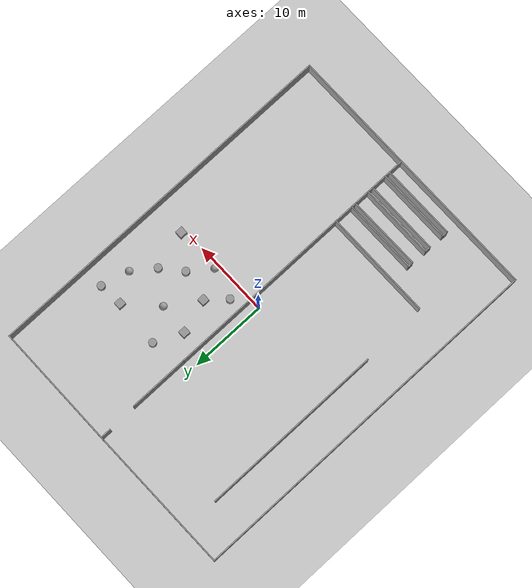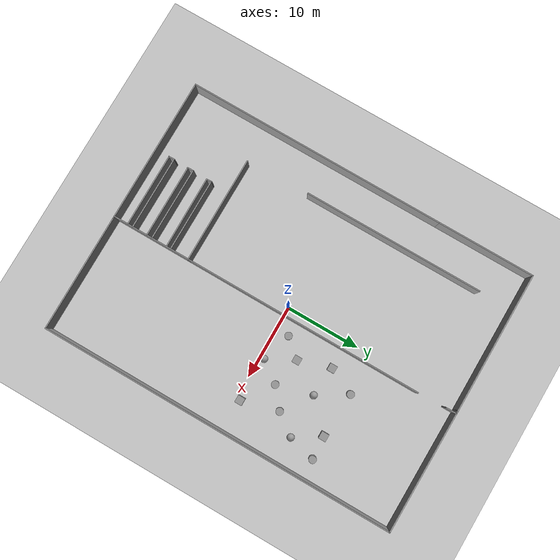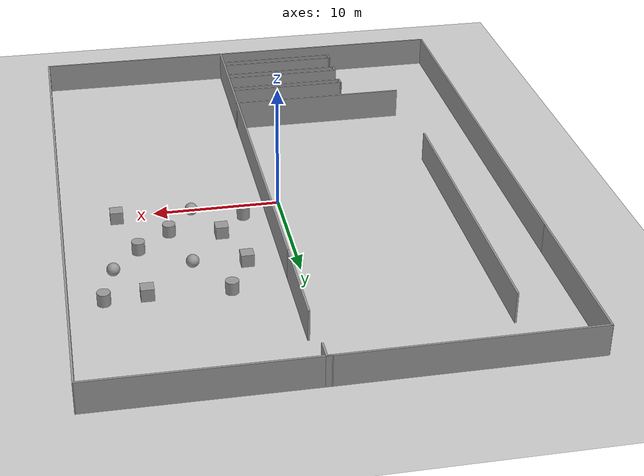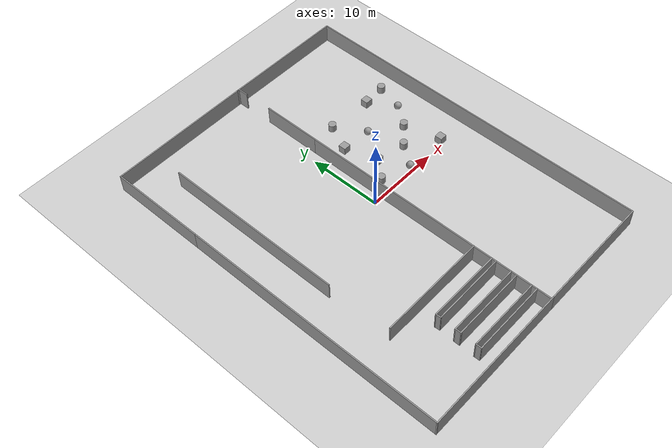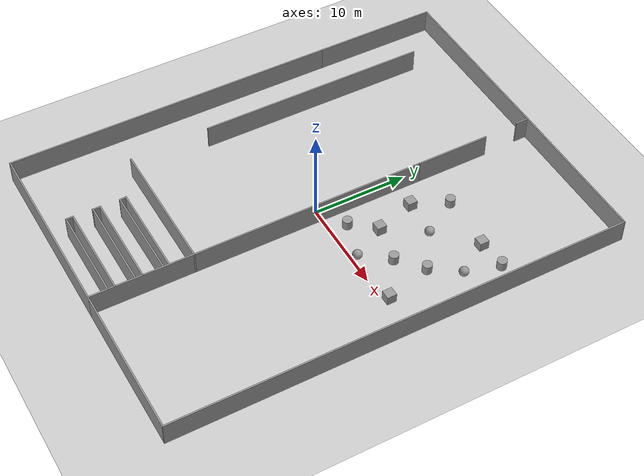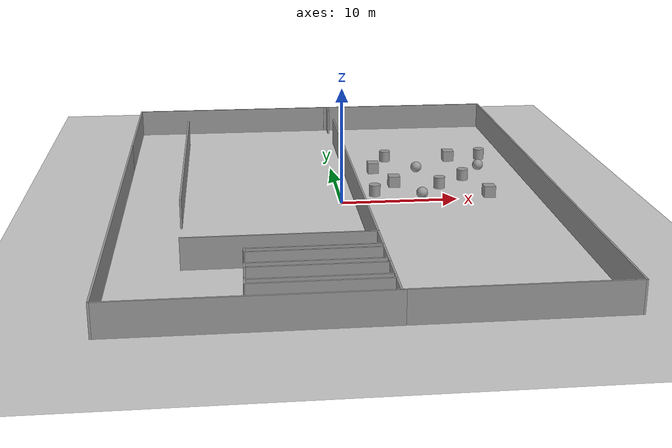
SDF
<sdf version="1.6">
 <world name="default">
  <light name="sun" type="directional">
   <pose>0 0 10 0 -0 0</pose>
   <diffuse>0.8 0.8 0.8 1</diffuse>
   <specular>0.1 0.1 0.1 1</specular>
   <attenuation>
    <range>1000</range>
    <constant>0.9</constant>
    <linear>0.01</linear>
    <quadratic>0.001</quadratic>
   </attenuation>
   <direction>-0.5 0.5 -1</direction>
  </light>
  <model name="ground_plane">
   <static>1</static>
   <link name="link">
    <collision name="collision">
     <geometry><plane><normal>0 0 1</normal><size>100 100</size></plane></geometry>
     <surface><friction><ode><mu>100</mu><mu2>50</mu2></ode></friction></surface>
    </collision>
    <visual name="visual">
     <cast_shadows>0</cast_shadows>
     <geometry><plane><normal>0 0 1</normal><size>100 100</size></plane></geometry>
     <material>
      <script><uri>file://media/materials/scripts/gazebo.material</uri><name>Gazebo/Grey</name></script>
     </material>
    </visual>
   </link>
  </model>
  <gravity>0 0 -9.8</gravity>
  <magnetic_field>6e-06 2.3e-05 -4.2e-05</magnetic_field>
  <atmosphere type="adiabatic"/>
  <physics name="default_physics" default="0" type="ode">
   <max_step_size>0.01</max_step_size>
   <real_time_factor>1</real_time_factor>
   <real_time_update_rate>100</real_time_update_rate>
  </physics>
  <scene><ambient>0.4 0.4 0.4 1</ambient><background>0.7 0.7 0.7 1</background><shadows>1</shadows></scene>
  <spherical_coordinates>
   <surface_model>EARTH_WGS84</surface_model>
   <latitude_deg>0</latitude_deg>
   <longitude_deg>0</longitude_deg>
   <elevation>0</elevation>
   <heading_deg>0</heading_deg>
  </spherical_coordinates>
  <model name="ruvu_warehouse">
   <pose>-0.571999 -0.121072 0 0 -0 0</pose>
   <link name="Wall_0">
    <collision name="Wall_0_Collision">
     <geometry><box><size>20 0.15 2.5</size></box></geometry>
     <pose>0 0 1.25 0 -0 0</pose>
    </collision>
    <visual name="Wall_0_Visual">
     <pose>0 0 1.25 0 -0 0</pose>
     <geometry><box><size>20 0.15 2.5</size></box></geometry>
     <material>
      <script><uri>file://media/materials/scripts/gazebo.material</uri><name>Gazebo/Grey</name></script>
      <ambient>1 1 1 1</ambient>
     </material>
    </visual>
    <pose>-7.92522 -24.2252 0 0 -0 3.14159</pose>
   </link>
   <link name="Wall_12">
    <collision name="Wall_12_Collision">
     <geometry><box><size>10 0.15 2.5</size></box></geometry>
     <pose>0 0 1.25 0 -0 0</pose>
    </collision>
    <visual name="Wall_12_Visual">
     <pose>0 0 1.25 0 -0 0</pose>
     <geometry><box><size>10 0.15 2.5</size></box></geometry>
     <material>
      <script><uri>file://media/materials/scripts/gazebo.material</uri><name>Gazebo/Grey</name></script>
      <ambient>1 1 1 1</ambient>
     </material>
    </visual>
    <pose>-3.23398 -22.2759 0 0 -0 3.14159</pose>
   </link>
   <link name="Wall_17">
    <collision name="Wall_17_Collision">
     <geometry><box><size>10 0.15 2.5</size></box></geometry>
     <pose>0 0 1.25 0 -0 0</pose>
    </collision>
    <visual name="Wall_17_Visual">
     <pose>0 0 1.25 0 -0 0</pose>
     <geometry><box><size>10 0.15 2.5</size></box></geometry>
     <material>
      <script><uri>file://media/materials/scripts/gazebo.material</uri><name>Gazebo/Grey</name></script>
      <ambient>1 1 1 1</ambient>
     </material>
    </visual>
    <pose>-3.24395 -21.5612 0 0 -0 3.14159</pose>
   </link>
   <link name="Wall_19">
    <collision name="Wall_19_Collision">
     <geometry><box><size>9.99597 0.15 2.5</size></box></geometry>
     <pose>0 0 1.25 0 -0 0</pose>
    </collision>
    <visual name="Wall_19_Visual">
     <pose>0 0 1.25 0 -0 0</pose>
     <geometry><box><size>9.99597 0.15 2.5</size></box></geometry>
     <material>
      <script><uri>file://media/materials/scripts/gazebo.material</uri><name>Gazebo/Grey</name></script>
      <ambient>1 1 1 1</ambient>
     </material>
    </visual>
    <pose>-3.19541 -19.5108 0 0 -0 3.14092</pose>
   </link>
   <link name="Wall_21">
    <collision name="Wall_21_Collision">
     <geometry><box><size>0.864713 0.15 2.5</size></box></geometry>
     <pose>0 0 1.25 0 -0 0</pose>
    </collision>
    <visual name="Wall_21_Visual">
     <pose>0 0 1.25 0 -0 0</pose>
     <geometry><box><size>0.864713 0.15 2.5</size></box></geometry>
     <material>
      <script><uri>file://media/materials/scripts/gazebo.material</uri><name>Gazebo/Grey</name></script>
      <ambient>1 1 1 1</ambient>
     </material>
    </visual>
    <pose>-8.16396 -21.9185 0 0 -0 1.58474</pose>
   </link>
   <link name="Wall_24">
    <collision name="Wall_24_Collision">
     <geometry><box><size>9.99597 0.15 2.5</size></box></geometry>
     <pose>0 0 1.25 0 -0 0</pose>
    </collision>
    <visual name="Wall_24_Visual">
     <pose>0 0 1.25 0 -0 0</pose>
     <geometry><box><size>9.99597 0.15 2.5</size></box></geometry>
     <material>
      <script><uri>file://media/materials/scripts/gazebo.material</uri><name>Gazebo/Grey</name></script>
      <ambient>1 1 1 1</ambient>
     </material>
    </visual>
    <pose>-3.19541 -18.7665 0 0 -0 3.14092</pose>
   </link>
   <link name="Wall_25">
    <collision name="Wall_25_Collision">
     <geometry><box><size>0.894383 0.15 2.5</size></box></geometry>
     <pose>0 0 1.25 0 -0 0</pose>
    </collision>
    <visual name="Wall_25_Visual">
     <pose>0 0 1.25 0 -0 0</pose>
     <geometry><box><size>0.894383 0.15 2.5</size></box></geometry>
     <material>
      <script><uri>file://media/materials/scripts/gazebo.material</uri><name>Gazebo/Grey</name></script>
      <ambient>1 1 1 1</ambient>
     </material>
    </visual>
    <pose>-8.11839 -19.1619 0 0 0 -1.5708</pose>
   </link>
   <link name="Wall_27">
    <collision name="Wall_27_Collision">
     <geometry><box><size>9.91642 0.15 2.5</size></box></geometry>
     <pose>0 0 1.25 0 -0 0</pose>
    </collision>
    <visual name="Wall_27_Visual">
     <pose>0 0 1.25 0 -0 0</pose>
     <geometry><box><size>9.91642 0.15 2.5</size></box></geometry>
     <material>
      <script><uri>file://media/materials/scripts/gazebo.material</uri><name>Gazebo/Grey</name></script>
      <ambient>1 1 1 1</ambient>
     </material>
    </visual>
    <pose>-3.15556 -16.7028 0 0 0 -3.13614</pose>
   </link>
   <link name="Wall_29">
    <collision name="Wall_29_Collision">
     <geometry><box><size>9.9628 0.15 2.5</size></box></geometry>
     <pose>0 0 1.25 0 -0 0</pose>
    </collision>
    <visual name="Wall_29_Visual">
     <pose>0 0 1.25 0 -0 0</pose>
     <geometry><box><size>9.9628 0.15 2.5</size></box></geometry>
     <material>
      <script><uri>file://media/materials/scripts/gazebo.material</uri><name>Gazebo/Grey</name></script>
      <ambient>1 1 1 1</ambient>
     </material>
    </visual>
    <pose>-3.17882 -16.0796 0 0 -0 0.00068</pose>
   </link>
   <link name="Wall_3">
    <collision name="Wall_3_Collision">
     <geometry><box><size>35.5 0.15 2.5</size></box></geometry>
     <pose>0 0 1.25 0 -0 0</pose>
    </collision>
    <visual name="Wall_3_Visual">
     <pose>0 0 1.25 0 -0 0</pose>
     <geometry><box><size>35.5 0.15 2.5</size></box></geometry>
     <material>
      <script><uri>file://media/materials/scripts/gazebo.material</uri><name>Gazebo/Grey</name></script>
      <ambient>1 1 1 1</ambient>
     </material>
    </visual>
    <pose>-17.8502 -6.55022 0 0 -0 1.5708</pose>
   </link>
   <link name="Wall_31">
    <collision name="Wall_31_Collision">
     <geometry><box><size>0.798196 0.15 2.5</size></box></geometry>
     <pose>0 0 1.25 0 -0 0</pose>
    </collision>
    <visual name="Wall_31_Visual">
     <pose>0 0 1.25 0 -0 0</pose>
     <geometry><box><size>0.798196 0.15 2.5</size></box></geometry>
     <material>
      <script><uri>file://media/materials/scripts/gazebo.material</uri><name>Gazebo/Grey</name></script>
      <ambient>1 1 1 1</ambient>
     </material>
    </visual>
    <pose>-8.06196 -16.4062 0 0 0 -1.49896</pose>
   </link>
   <link name="Wall_34">
    <collision name="Wall_34_Collision">
     <geometry><box><size>14.5 0.15 2.5</size></box></geometry>
     <pose>0 0 1.25 0 -0 0</pose>
    </collision>
    <visual name="Wall_34_Visual">
     <pose>0 0 1.25 0 -0 0</pose>
     <geometry><box><size>14.5 0.15 2.5</size></box></geometry>
     <material>
      <script><uri>file://media/materials/scripts/gazebo.material</uri><name>Gazebo/Grey</name></script>
      <ambient>1 1 1 1</ambient>
     </material>
    </visual>
    <pose>-5.4135 -13.532 0 0 -0 3.14159</pose>
   </link>
   <link name="Wall_39">
    <collision name="Wall_39_Collision">
     <geometry><box><size>24.5 0.15 2.5</size></box></geometry>
     <pose>0 0 1.25 0 -0 0</pose>
    </collision>
    <visual name="Wall_39_Visual">
     <pose>0 0 1.25 0 -0 0</pose>
     <geometry><box><size>24.5 0.15 2.5</size></box></geometry>
     <material>
      <script><uri>file://media/materials/scripts/gazebo.material</uri><name>Gazebo/Grey</name></script>
      <ambient>1 1 1 1</ambient>
     </material>
    </visual>
    <pose>-12.8732 7.28972 0 0 -0 1.5708</pose>
   </link>
   <link name="Wall_41">
    <collision name="Wall_41_Collision">
     <geometry><box><size>13.25 0.15 2.5</size></box></geometry>
     <pose>0 0 1.25 0 -0 0</pose>
    </collision>
    <visual name="Wall_41_Visual">
     <pose>0 0 1.25 0 -0 0</pose>
     <geometry><box><size>13.25 0.15 2.5</size></box></geometry>
     <material>
      <script><uri>file://media/materials/scripts/gazebo.material</uri><name>Gazebo/Grey</name></script>
      <ambient>1 1 1 1</ambient>
     </material>
    </visual>
    <pose>-17.8502 17.6748 0 0 -0 1.5708</pose>
   </link>
   <link name="Wall_42">
    <collision name="Wall_42_Collision">
     <geometry><box><size>19.25 0.15 2.5</size></box></geometry>
     <pose>0 0 1.25 0 -0 0</pose>
    </collision>
    <visual name="Wall_42_Visual">
     <pose>0 0 1.25 0 -0 0</pose>
     <geometry><box><size>19.25 0.15 2.5</size></box></geometry>
     <material>
      <script><uri>file://media/materials/scripts/gazebo.material</uri><name>Gazebo/Grey</name></script>
      <ambient>1 1 1 1</ambient>
     </material>
    </visual>
    <pose>-8.30022 24.2248 0 0 -0 0</pose>
   </link>
   <link name="Wall_46">
    <collision name="Wall_46_Collision">
     <geometry><box><size>0.5 0.15 2.5</size></box></geometry>
     <pose>0 0 1.25 0 -0 0</pose>
    </collision>
    <visual name="Wall_46_Visual">
     <pose>0 0 1.25 0 -0 0</pose>
     <geometry><box><size>0.5 0.15 2.5</size></box></geometry>
     <material>
      <script><uri>file://media/materials/scripts/gazebo.material</uri><name>Gazebo/Grey</name></script>
      <ambient>1 1 1 1</ambient>
     </material>
    </visual>
    <pose>1.42478 24.2248 0 0 -0 0</pose>
   </link>
   <link name="Wall_47">
    <collision name="Wall_47_Collision">
     <geometry><box><size>1.5 0.15 2.5</size></box></geometry>
     <pose>0 0 1.25 0 -0 0</pose>
    </collision>
    <visual name="Wall_47_Visual">
     <pose>0 0 1.25 0 -0 0</pose>
     <geometry><box><size>1.5 0.15 2.5</size></box></geometry>
     <material>
      <script><uri>file://media/materials/scripts/gazebo.material</uri><name>Gazebo/Grey</name></script>
      <ambient>1 1 1 1</ambient>
     </material>
    </visual>
    <pose>1.59978 23.5498 0 0 0 -1.5708</pose>
   </link>
   <link name="Wall_5">
    <collision name="Wall_5_Collision">
     <geometry><box><size>35.5 0.15 2.5</size></box></geometry>
     <pose>0 0 1.25 0 -0 0</pose>
    </collision>
    <visual name="Wall_5_Visual">
     <pose>0 0 1.25 0 -0 0</pose>
     <geometry><box><size>35.5 0.15 2.5</size></box></geometry>
     <material>
      <script><uri>file://media/materials/scripts/gazebo.material</uri><name>Gazebo/Grey</name></script>
      <ambient>1 1 1 1</ambient>
     </material>
    </visual>
    <pose>1.74978 -6.55022 0 0 0 -1.5708</pose>
   </link>
   <link name="Wall_51">
    <collision name="Wall_51_Collision">
     <geometry><box><size>8 0.15 2.5</size></box></geometry>
     <pose>0 0 1.25 0 -0 0</pose>
    </collision>
    <visual name="Wall_51_Visual">
     <pose>0 0 1.25 0 -0 0</pose>
     <geometry><box><size>8 0.15 2.5</size></box></geometry>
     <material>
      <script><uri>file://media/materials/scripts/gazebo.material</uri><name>Gazebo/Grey</name></script>
      <ambient>1 1 1 1</ambient>
     </material>
    </visual>
    <pose>1.74978 15.0498 0 0 -0 1.5708</pose>
   </link>
   <link name="Wall_53">
    <collision name="Wall_53_Collision">
     <geometry><box><size>16.25 0.15 2.5</size></box></geometry>
     <pose>0 0 1.25 0 -0 0</pose>
    </collision>
    <visual name="Wall_53_Visual">
     <pose>0 0 1.25 0 -0 0</pose>
     <geometry><box><size>16.25 0.15 2.5</size></box></geometry>
     <material>
      <script><uri>file://media/materials/scripts/gazebo.material</uri><name>Gazebo/Grey</name></script>
      <ambient>1 1 1 1</ambient>
     </material>
    </visual>
    <pose>9.79978 -24.2252 0 0 -0 0</pose>
   </link>
   <link name="Wall_54">
    <collision name="Wall_54_Collision">
     <geometry><box><size>48.5 0.15 2.5</size></box></geometry>
     <pose>0 0 1.25 0 -0 0</pose>
    </collision>
    <visual name="Wall_54_Visual">
     <pose>0 0 1.25 0 -0 0</pose>
     <geometry><box><size>48.5 0.15 2.5</size></box></geometry>
     <material>
      <script><uri>file://media/materials/scripts/gazebo.material</uri><name>Gazebo/Grey</name></script>
      <ambient>1 1 1 1</ambient>
     </material>
    </visual>
    <pose>17.8498 -0.050223 0 0 -0 1.5708</pose>
   </link>
   <link name="Wall_55">
    <collision name="Wall_55_Collision">
     <geometry><box><size>16.7503 0.15 2.5</size></box></geometry>
     <pose>0 0 1.25 0 -0 0</pose>
    </collision>
    <visual name="Wall_55_Visual">
     <pose>0 0 1.25 0 -0 0</pose>
     <geometry><box><size>16.7503 0.15 2.5</size></box></geometry>
     <material>
      <script><uri>file://media/materials/scripts/gazebo.material</uri><name>Gazebo/Grey</name></script>
      <ambient>1 1 1 1</ambient>
     </material>
    </visual>
    <pose>9.54978 24.1748 0 0 -0 3.13557</pose>
   </link>
   <static>1</static>
  </model>
  <model name="unit_cylinder_0">
   <static>1</static>
   <pose>5.4637 12.0737 0.5 0 -0 0</pose>
   <link name="link">
    <inertial>
     <mass>1</mass>
     <inertia><ixx>0.145833</ixx><ixy>0</ixy><ixz>0</ixz><iyy>0.145833</iyy><iyz>0</iyz><izz>0.125</izz></inertia>
    </inertial>
    <collision name="collision">
     <geometry><cylinder><radius>0.5</radius><length>1</length></cylinder></geometry>
    </collision>
    <visual name="visual">
     <geometry><cylinder><radius>0.5</radius><length>1</length></cylinder></geometry>
     <material>
      <script><name>Gazebo/Grey</name><uri>file://media/materials/scripts/gazebo.material</uri></script>
     </material>
    </visual>
   </link>
  </model>
  <model name="unit_box_0">
   <static>1</static>
   <pose>11.5673 11.74 0.5 0 -0 0</pose>
   <link name="link">
    <inertial>
     <mass>1</mass>
     <inertia>
      <ixx>0.166667</ixx>
      <ixy>0</ixy>
      <ixz>0</ixz>
      <iyy>0.166667</iyy>
      <iyz>0</iyz>
      <izz>0.166667</izz>
     </inertia>
    </inertial>
    <collision name="collision"><geometry><box><size>1 1 1</size></box></geometry></collision>
    <visual name="visual">
     <geometry><box><size>1 1 1</size></box></geometry>
     <material>
      <script><name>Gazebo/Grey</name><uri>file://media/materials/scripts/gazebo.material</uri></script>
     </material>
    </visual>
   </link>
  </model>
  <model name="unit_sphere_0">
   <static>1</static>
   <pose>7.85751 8.18688 0.5 0 -0 0</pose>
   <link name="link">
    <inertial>
     <mass>1</mass>
     <inertia><ixx>0.1</ixx><ixy>0</ixy><ixz>0</ixz><iyy>0.1</iyy><iyz>0</iyz><izz>0.1</izz></inertia>
    </inertial>
    <collision name="collision"><geometry><sphere><radius>0.5</radius></sphere></geometry></collision>
    <visual name="visual">
     <geometry><sphere><radius>0.5</radius></sphere></geometry>
     <material>
      <script><name>Gazebo/Grey</name><uri>file://media/materials/scripts/gazebo.material</uri></script>
     </material>
    </visual>
   </link>
  </model>
  <model name="unit_box_1">
   <static>1</static>
   <pose>3.81579 8.48414 0.5 0 -0 0</pose>
   <link name="link">
    <inertial>
     <mass>1</mass>
     <inertia>
      <ixx>0.166667</ixx>
      <ixy>0</ixy>
      <ixz>0</ixz>
      <iyy>0.166667</iyy>
      <iyz>0</iyz>
      <izz>0.166667</izz>
     </inertia>
    </inertial>
    <collision name="collision"><geometry><box><size>1 1 1</size></box></geometry></collision>
    <visual name="visual">
     <geometry><box><size>1 1 1</size></box></geometry>
     <material>
      <script><name>Gazebo/Grey</name><uri>file://media/materials/scripts/gazebo.material</uri></script>
     </material>
    </visual>
   </link>
  </model>
  <model name="unit_box_2">
   <static>1</static>
   <pose>5.14012 4.19936 0.5 0 -0 0</pose>
   <link name="link">
    <inertial>
     <mass>1</mass>
     <inertia>
      <ixx>0.166667</ixx>
      <ixy>0</ixy>
      <ixz>0</ixz>
      <iyy>0.166667</iyy>
      <iyz>0</iyz>
      <izz>0.166667</izz>
     </inertia>
    </inertial>
    <collision name="collision"><geometry><box><size>1 1 1</size></box></geometry></collision>
    <visual name="visual">
     <geometry><box><size>1 1 1</size></box></geometry>
     <material>
      <script><name>Gazebo/Grey</name><uri>file://media/materials/scripts/gazebo.material</uri></script>
     </material>
    </visual>
   </link>
  </model>
  <model name="unit_cylinder_1">
   <static>1</static>
   <pose>11.6701 5.52565 0.5 0 -0 0</pose>
   <link name="link">
    <inertial>
     <mass>1</mass>
     <inertia><ixx>0.145833</ixx><ixy>0</ixy><ixz>0</ixz><iyy>0.145833</iyy><iyz>0</iyz><izz>0.125</izz></inertia>
    </inertial>
    <collision name="collision">
     <geometry><cylinder><radius>0.5</radius><length>1</length></cylinder></geometry>
    </collision>
    <visual name="visual">
     <geometry><cylinder><radius>0.5</radius><length>1</length></cylinder></geometry>
     <material>
      <script><name>Gazebo/Grey</name><uri>file://media/materials/scripts/gazebo.material</uri></script>
     </material>
    </visual>
   </link>
  </model>
  <model name="unit_cylinder_2">
   <static>1</static>
   <pose>14.6822 11.9568 0.5 0 -0 0</pose>
   <link name="link">
    <inertial>
     <mass>1</mass>
     <inertia><ixx>0.145833</ixx><ixy>0</ixy><ixz>0</ixz><iyy>0.145833</iyy><iyz>0</iyz><izz>0.125</izz></inertia>
    </inertial>
    <collision name="collision">
     <geometry><cylinder><radius>0.5</radius><length>1</length></cylinder></geometry>
    </collision>
    <visual name="visual">
     <geometry><cylinder><radius>0.5</radius><length>1</length></cylinder></geometry>
     <material>
      <script><name>Gazebo/Grey</name><uri>file://media/materials/scripts/gazebo.material</uri></script>
     </material>
    </visual>
   </link>
  </model>
  <model name="unit_cylinder_3">
   <static>1</static>
   <pose>9.1121 3.38765 0.5 0 -0 0</pose>
   <link name="link">
    <inertial>
     <mass>1</mass>
     <inertia><ixx>0.145833</ixx><ixy>0</ixy><ixz>0</ixz><iyy>0.145833</iyy><iyz>0</iyz><izz>0.125</izz></inertia>
    </inertial>
    <collision name="collision">
     <geometry><cylinder><radius>0.5</radius><length>1</length></cylinder></geometry>
    </collision>
    <visual name="visual">
     <geometry><cylinder><radius>0.5</radius><length>1</length></cylinder></geometry>
     <material>
      <script><name>Gazebo/Grey</name><uri>file://media/materials/scripts/gazebo.material</uri></script>
     </material>
    </visual>
   </link>
  </model>
  <model name="unit_sphere_1">
   <static>1</static>
   <pose>13.7503 8.30745 0.5 0 -0 0</pose>
   <link name="link">
    <inertial>
     <mass>1</mass>
     <inertia><ixx>0.1</ixx><ixy>0</ixy><ixz>0</ixz><iyy>0.1</iyy><iyz>0</iyz><izz>0.1</izz></inertia>
    </inertial>
    <collision name="collision"><geometry><sphere><radius>0.5</radius></sphere></geometry></collision>
    <visual name="visual">
     <geometry><sphere><radius>0.5</radius></sphere></geometry>
     <material>
      <script><name>Gazebo/Grey</name><uri>file://media/materials/scripts/gazebo.material</uri></script>
     </material>
    </visual>
   </link>
  </model>
  <model name="unit_box_3">
   <static>1</static>
   <pose>12.9556 0.598333 0.5 0 -0 0</pose>
   <link name="link">
    <inertial>
     <mass>1</mass>
     <inertia>
      <ixx>0.166667</ixx>
      <ixy>0</ixy>
      <ixz>0</ixz>
      <iyy>0.166667</iyy>
      <iyz>0</iyz>
      <izz>0.166667</izz>
     </inertia>
    </inertial>
    <collision name="collision"><geometry><box><size>1 1 1</size></box></geometry></collision>
    <visual name="visual">
     <geometry><box><size>1 1 1</size></box></geometry>
     <material>
      <script><name>Gazebo/Grey</name><uri>file://media/materials/scripts/gazebo.material</uri></script>
     </material>
    </visual>
   </link>
  </model>
  <model name="unit_cylinder_4">
   <static>1</static>
   <pose>3.07806 1.77981 0.5 0 -0 0</pose>
   <link name="link">
    <inertial>
     <mass>1</mass>
     <inertia><ixx>0.145833</ixx><ixy>0</ixy><ixz>0</ixz><iyy>0.145833</iyy><iyz>0</iyz><izz>0.125</izz></inertia>
    </inertial>
    <collision name="collision">
     <geometry><cylinder><radius>0.5</radius><length>1</length></cylinder></geometry>
    </collision>
    <visual name="visual">
     <geometry><cylinder><radius>0.5</radius><length>1</length></cylinder></geometry>
     <material>
      <script><name>Gazebo/Grey</name><uri>file://media/materials/scripts/gazebo.material</uri></script>
     </material>
    </visual>
   </link>
  </model>
  <model name="unit_sphere_2">
   <static>1</static>
   <pose>7.0676 0.592544 0.5 0 -0 0</pose>
   <link name="link">
    <inertial>
     <mass>1</mass>
     <inertia><ixx>0.1</ixx><ixy>0</ixy><ixz>0</ixz><iyy>0.1</iyy><iyz>0</iyz><izz>0.1</izz></inertia>
    </inertial>
    <collision name="collision"><geometry><sphere><radius>0.5</radius></sphere></geometry></collision>
    <visual name="visual">
     <geometry><sphere><radius>0.5</radius></sphere></geometry>
     <material>
      <script><name>Gazebo/Grey</name><uri>file://media/materials/scripts/gazebo.material</uri></script>
     </material>
    </visual>
   </link>
  </model>
 </world>
</sdf>
